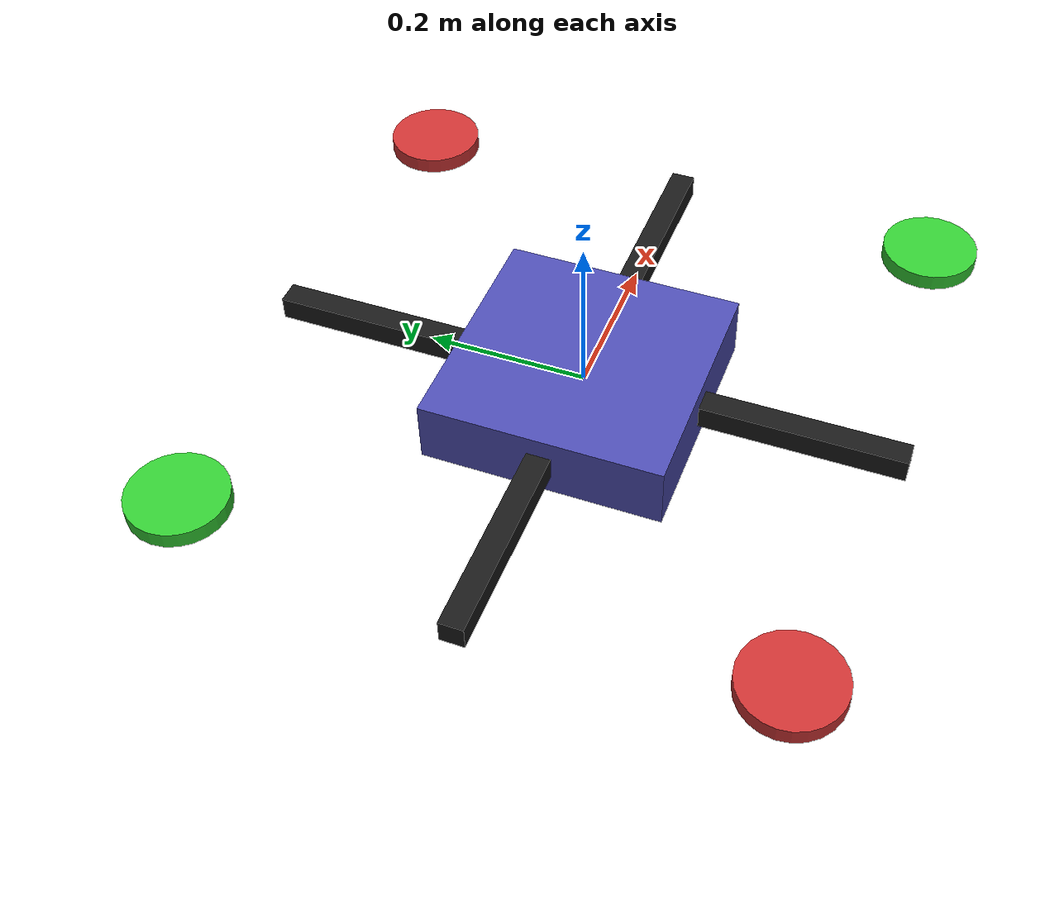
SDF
<?xml version="1.0" ?>
<sdf version="1.9">
  <model name="survey_drone">
    <static>false</static>

    <link name="base_link">
      <pose>0 0 0 0 0 0</pose>

      <inertial>
        <mass>1.5</mass>
        <inertia>
          <ixx>0.029125</ixx>
          <ixy>0</ixy>
          <ixz>0</ixz>
          <iyy>0.029125</iyy>
          <iyz>0</iyz>
          <izz>0.055225</izz>
        </inertia>
      </inertial>

      <!-- Main body box -->
      <visual name="body_visual">
        <pose>0 0 0 0 0 0</pose>
        <geometry><box><size>0.30 0.30 0.08</size></box></geometry>
        <material><ambient>0.3 0.3 0.7 1</ambient><diffuse>0.3 0.3 0.7 1</diffuse></material>
      </visual>

      <!-- Arms -->
      <visual name="arm_x_visual">
        <pose>0 0 0 0 0 0</pose>
        <geometry><box><size>0.80 0.03 0.03</size></box></geometry>
        <material><ambient>0.1 0.1 0.1 1</ambient><diffuse>0.1 0.1 0.1 1</diffuse></material>
      </visual>
      <visual name="arm_y_visual">
        <pose>0 0 0 0 0 0</pose>
        <geometry><box><size>0.03 0.80 0.03</size></box></geometry>
        <material><ambient>0.1 0.1 0.1 1</ambient><diffuse>0.1 0.1 0.1 1</diffuse></material>
      </visual>

      <!-- Motor discs -->
      <visual name="motor1_visual">
        <pose>0.35 0.35 0.02 0 0 0</pose>
        <geometry><cylinder><radius>0.06</radius><length>0.02</length></cylinder></geometry>
        <material><ambient>0.8 0.2 0.2 1</ambient><diffuse>0.8 0.2 0.2 1</diffuse></material>
      </visual>
      <visual name="motor2_visual">
        <pose>-0.35 0.35 0.02 0 0 0</pose>
        <geometry><cylinder><radius>0.06</radius><length>0.02</length></cylinder></geometry>
        <material><ambient>0.2 0.8 0.2 1</ambient><diffuse>0.2 0.8 0.2 1</diffuse></material>
      </visual>
      <visual name="motor3_visual">
        <pose>0.35 -0.35 0.02 0 0 0</pose>
        <geometry><cylinder><radius>0.06</radius><length>0.02</length></cylinder></geometry>
        <material><ambient>0.2 0.8 0.2 1</ambient><diffuse>0.2 0.8 0.2 1</diffuse></material>
      </visual>
      <visual name="motor4_visual">
        <pose>-0.35 -0.35 0.02 0 0 0</pose>
        <geometry><cylinder><radius>0.06</radius><length>0.02</length></cylinder></geometry>
        <material><ambient>0.8 0.2 0.2 1</ambient><diffuse>0.8 0.2 0.2 1</diffuse></material>
      </visual>

      <!-- Collision (simplified box) -->
      <collision name="body_collision">
        <geometry><box><size>0.80 0.80 0.10</size></box></geometry>
      </collision>

      <!-- DOWNWARD MONO CAMERA: pitch -90 deg (pointing down) -->
      <sensor name="mono_camera" type="camera">
        <pose>0 0 -0.05 0 1.5708 0</pose>
        <camera>
          <horizontal_fov>1.204</horizontal_fov>
          <image><width>800</width><height>600</height><format>RGB_INT8</format></image>
          <clip><near>0.1</near><far>200</far></clip>
        </camera>
        <always_on>true</always_on>
        <update_rate>5</update_rate>
        <visualize>false</visualize>
        <topic>mono_camera</topic>
      </sensor>

      <!-- FRONT RGB CAMERA: tilted 20 deg down -->
      <sensor name="rgb_camera" type="camera">
        <pose>0.15 0 0 0 0.349 0</pose>
        <camera>
          <horizontal_fov>1.204</horizontal_fov>
          <image><width>800</width><height>600</height><format>RGB_INT8</format></image>
          <clip><near>0.1</near><far>200</far></clip>
        </camera>
        <always_on>true</always_on>
        <update_rate>5</update_rate>
        <visualize>false</visualize>
        <topic>rgb_camera</topic>
      </sensor>

      <!-- FRONT DEPTH CAMERA: tilted 20 deg down -->
      <sensor name="depth_camera" type="depth_camera">
        <pose>0.15 0 0.02 0 0.349 0</pose>
        <camera>
          <horizontal_fov>1.204</horizontal_fov>
          <image><width>640</width><height>480</height><format>R_FLOAT32</format></image>
          <clip><near>0.1</near><far>50</far></clip>
        </camera>
        <always_on>true</always_on>
        <update_rate>5</update_rate>
        <visualize>false</visualize>
        <topic>depth_camera</topic>
      </sensor>

    </link>
  </model>
</sdf>
